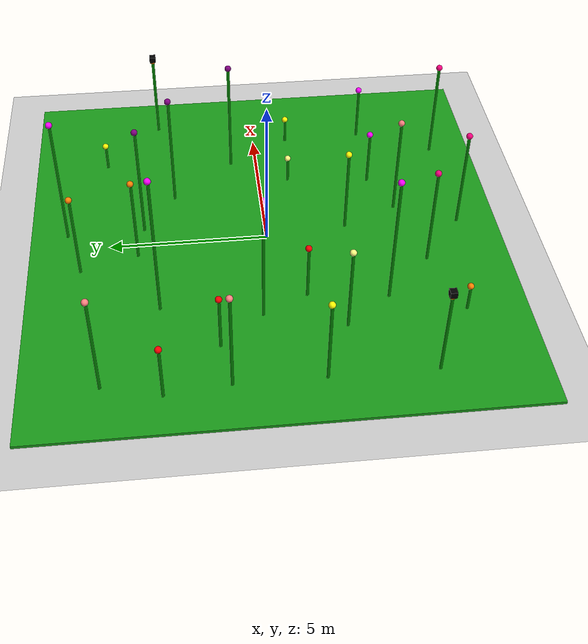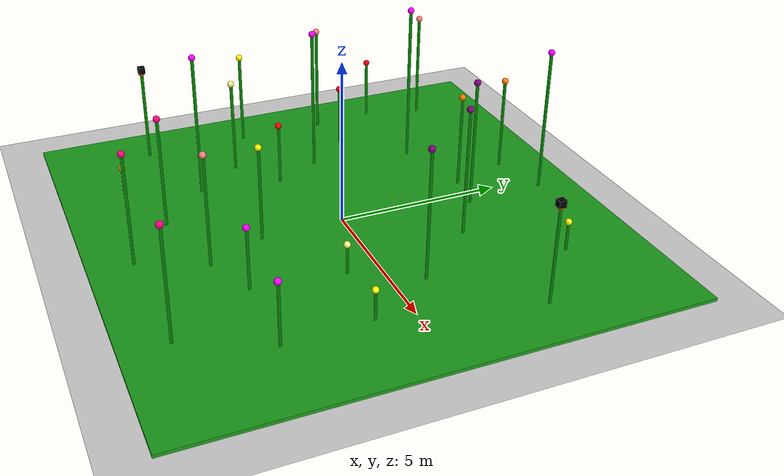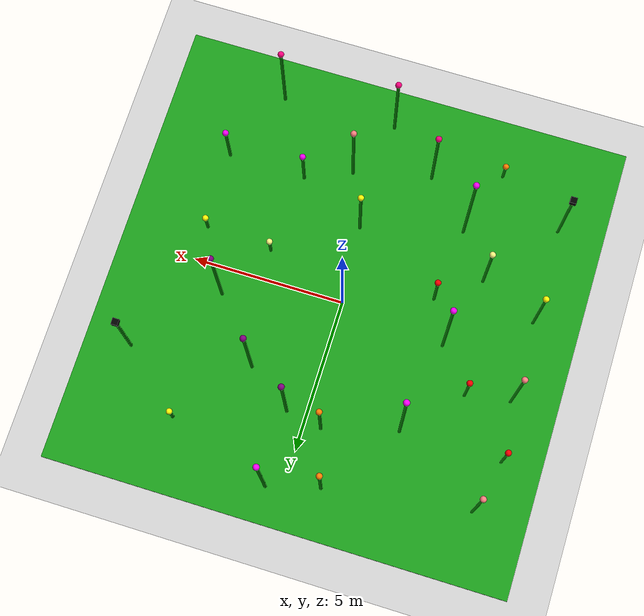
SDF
<?xml version="1.0" ?>
<sdf version="1.6">
  <world name="farm_world">

    <!-- Physics -->
    <physics name="default_physics" type="ode">
      <max_step_size>0.001</max_step_size>
      <real_time_factor>1</real_time_factor>
      <real_time_update_rate>1000</real_time_update_rate>
    </physics>

    <!-- Gravity -->
    <gravity>0 0 -9.8</gravity>

    <!-- Atmosphere -->
    <atmosphere type="adiabatic"/>

    <!-- Scene -->
    <scene>
      <ambient>0.4 0.4 0.4 1</ambient>
      <background>0.7 0.7 0.7 1</background>
      <shadows>true</shadows>
    </scene>

    <!-- Ground Plane -->
    <model name='ground_plane'>
      <static>true</static>
      <link name='link'>
        <collision name='collision'>
          <geometry>
            <plane>
              <normal>0 0 1</normal>
              <size>100 100</size>
            </plane>
          </geometry>
          <surface>
            <friction><ode/></friction>
          </surface>
        </collision>
        <visual name='visual'>
          <geometry>
            <plane>
              <normal>0 0 1</normal>
              <size>100 100</size>
            </plane>
          </geometry>
          <material>
            <ambient>0.8 0.8 0.8 1</ambient>
            <diffuse>0.8 0.8 0.8 1</diffuse>
            <specular>0.8 0.8 0.8 1</specular>
          </material>
        </visual>
      </link>
    </model>

    <!-- Grass Patch -->
    <model name="grass_patch">
      <static>true</static>
      <link name="link">
        <visual name="grass_visual">
          <geometry>
            <box>
              <size>15 15 0.1</size>
            </box>
          </geometry>
          <material>
            <ambient>0.1 0.6 0.1 1</ambient>
            <diffuse>0.1 0.6 0.1 1</diffuse>
          </material>
          <pose>0 0 0.05 0 0 0</pose>
        </visual>
        <collision name="grass_collision">
          <geometry>
            <box>
              <size>15 15 0.1</size>
            </box>
          </geometry>
        </collision>
      </link>
    </model>

    <!-- 30 Random Flowers -->

    <model name="flower1">
      <static>true</static>
      <link name="link">
        <visual name="stem_visual">
          <geometry><cylinder><radius>0.05</radius><length>2.0</length></cylinder></geometry>
          <material><ambient>0 0.5 0 1</ambient><diffuse>0 0.5 0 1</diffuse></material>
          <pose>0 0 1.0 0 0 0</pose>
        </visual>
        <visual name="top_visual">
          <geometry><sphere><radius>0.1</radius></sphere></geometry>
          <material><ambient>1 0 0 1</ambient><diffuse>1 0 0 1</diffuse></material>
          <pose>0 0 2.0 0 0 0</pose>
        </visual>
        <collision name="stem_collision">
          <geometry><cylinder><radius>0.05</radius><length>2.0</length></cylinder></geometry>
          <pose>0 0 1.0 0 0 0</pose>
        </collision>
        <collision name="top_collision">
          <geometry><sphere><radius>0.1</radius></sphere></geometry>
          <pose>0 0 2.0 0 0 0</pose>
        </collision>
      </link>
      <pose>-6.21 3.47 0 0 0 0</pose>
    </model>

    <model name="flower2">
      <static>true</static>
      <link name="link">
        <visual name="stem_visual">
          <geometry><cylinder><radius>0.05</radius><length>1.0</length></cylinder></geometry>
          <material><ambient>0 0.5 0 1</ambient><diffuse>0 0.5 0 1</diffuse></material>
          <pose>0 0 0.5 0 0 0</pose>
        </visual>
        <visual name="top_visual">
          <geometry><sphere><radius>0.1</radius></sphere></geometry>
          <material><ambient>1 1 0 1</ambient><diffuse>1 1 0 1</diffuse></material>
          <pose>0 0 1.0 0 0 0</pose>
        </visual>
        <collision name="stem_collision">
          <geometry><cylinder><radius>0.05</radius><length>1.0</length></cylinder></geometry>
          <pose>0 0 0.5 0 0 0</pose>
        </collision>
        <collision name="top_collision">
          <geometry><sphere><radius>0.1</radius></sphere></geometry>
          <pose>0 0 1.0 0 0 0</pose>
        </collision>
      </link>
      <pose>4.9199999999999999 -1.1299999999999999 0 0 0 0</pose>
    </model>

    <model name="flower3">
      <static>true</static>
      <link name="link">
        <visual name="stem_visual">
          <geometry><cylinder><radius>0.05</radius><length>4.5</length></cylinder></geometry>
          <material><ambient>0 0.5 0 1</ambient><diffuse>0 0.5 0 1</diffuse></material>
          <pose>0 0 2.25 0 0 0</pose>
        </visual>
        <visual name="top_visual">
          <geometry><sphere><radius>0.1</radius></sphere></geometry>
          <material><ambient>1 0 1 1</ambient><diffuse>1 0 1 1</diffuse></material>
          <pose>0 0 4.5 0 0 0</pose>
        </visual>
        <collision name="stem_collision">
          <geometry><cylinder><radius>0.05</radius><length>4.5</length></cylinder></geometry>
          <pose>0 0 2.25 0 0 0</pose>
        </collision>
        <collision name="top_collision">
          <geometry><sphere><radius>0.1</radius></sphere></geometry>
          <pose>0 0 4.5 0 0 0</pose>
        </collision>
      </link>
      <pose>0.55000000000000004 6.3399999999999999 0 0 0 0</pose>
    </model>

    <model name="flower4">
      <static>true</static>
      <link name="link">
        <visual name="stem_visual">
          <geometry><cylinder><radius>0.05</radius><length>1.0</length></cylinder></geometry>
          <material><ambient>0 0.5 0 1</ambient><diffuse>0 0.5 0 1</diffuse></material>
          <pose>0 0 0.5 0 0 0</pose>
        </visual>
        <visual name="top_visual">
          <geometry><sphere><radius>0.1</radius></sphere></geometry>
          <material><ambient>1 0.5 0 1</ambient><diffuse>1 0.5 0 1</diffuse></material>
          <pose>0 0 1.0 0 0 0</pose>
        </visual>
        <collision name="stem_collision">
          <geometry><cylinder><radius>0.05</radius><length>1.0</length></cylinder></geometry>
          <pose>0 0 0.5 0 0 0</pose>
        </collision>
        <collision name="top_collision">
          <geometry><sphere><radius>0.1</radius></sphere></geometry>
          <pose>0 0 1.0 0 0 0</pose>
        </collision>
      </link>
      <pose>-3.78 -5.62 0 0 0 0</pose>
    </model>

    <model name="flower5">
      <static>true</static>
      <link name="link">
        <visual name="stem_visual">
          <geometry><cylinder><radius>0.05</radius><length>4.0</length></cylinder></geometry>
          <material><ambient>0 0.5 0 1</ambient><diffuse>0 0.5 0 1</diffuse></material>
          <pose>0 0 2.0 0 0 0</pose>
        </visual>
        <visual name="top_visual">
          <geometry><sphere><radius>0.1</radius></sphere></geometry>
          <material><ambient>0.5 0 0.5 1</ambient><diffuse>0.5 0 0.5 1</diffuse></material>
          <pose>0 0 4.0 0 0 0</pose>
        </visual>
        <collision name="stem_collision">
          <geometry><cylinder><radius>0.05</radius><length>4.0</length></cylinder></geometry>
          <pose>0 0 2.0 0 0 0</pose>
        </collision>
        <collision name="top_collision">
          <geometry><sphere><radius>0.1</radius></sphere></geometry>
          <pose>0 0 4.0 0 0 0</pose>
        </collision>
      </link>
      <pose>2.11 2.87 0 0 0 0</pose>
    </model>

    <model name="flower6">
      <static>true</static>
      <link name="link">
        <visual name="stem_visual">
          <geometry><cylinder><radius>0.05</radius><length>1.0</length></cylinder></geometry>
          <material><ambient>0 0.5 0 1</ambient><diffuse>0 0.5 0 1</diffuse></material>
          <pose>0 0 0.5 0 0 0</pose>
        </visual>
        <visual name="top_visual">
          <geometry><sphere><radius>0.1</radius></sphere></geometry>
          <material><ambient>1 1 0.5 1</ambient><diffuse>1 1 0.5 1</diffuse></material>
          <pose>0 0 1.0 0 0 0</pose>
        </visual>
        <collision name="stem_collision">
          <geometry><cylinder><radius>0.05</radius><length>1.0</length></cylinder></geometry>
          <pose>0 0 0.5 0 0 0</pose>
        </collision>
        <collision name="top_collision">
          <geometry><sphere><radius>0.1</radius></sphere></geometry>
          <pose>0 0 1.0 0 0 0</pose>
        </collision>
      </link>
      <pose>2.7268669605255127 -0.98000001907348633 0 0 0 0</pose>
    </model>

    <model name="flower7">
      <static>true</static>
      <link name="link">
        <visual name="stem_visual">
          <geometry><cylinder><radius>0.05</radius><length>2.0</length></cylinder></geometry>
          <material><ambient>0 0.5 0 1</ambient><diffuse>0 0.5 0 1</diffuse></material>
          <pose>0 0 1.0 0 0 0</pose>
        </visual>
        <visual name="top_visual">
          <geometry><sphere><radius>0.1</radius></sphere></geometry>
          <material><ambient>1 0 1 1</ambient><diffuse>1 0 1 1</diffuse></material>
          <pose>0 0 2.0 0 0 0</pose>
        </visual>
        <collision name="stem_collision">
          <geometry><cylinder><radius>0.05</radius><length>2.0</length></cylinder></geometry>
          <pose>0 0 1.0 0 0 0</pose>
        </collision>
        <collision name="top_collision">
          <geometry><sphere><radius>0.1</radius></sphere></geometry>
          <pose>0 0 2.0 0 0 0</pose>
        </collision>
      </link>
      <pose>5.0106801986694336 -3.7122397422790527 0 0 0 0</pose>
    </model>

    <model name="flower8">
      <static>true</static>
      <link name="link">
        <visual name="stem_visual">
          <geometry><cylinder><radius>0.05</radius><length>3.5</length></cylinder></geometry>
          <material><ambient>0 0.5 0 1</ambient><diffuse>0 0.5 0 1</diffuse></material>
          <pose>0 0 1.75 0 0 0</pose>
        </visual>
        <visual name="top_visual">
          <geometry><sphere><radius>0.1</radius></sphere></geometry>
          <material><ambient>1 0.5 0.5 1</ambient><diffuse>1 0.5 0.5 1</diffuse></material>
          <pose>0 0 3.5 0 0 0</pose>
        </visual>
        <collision name="stem_collision">
          <geometry><cylinder><radius>0.05</radius><length>3.5</length></cylinder></geometry>
          <pose>0 0 1.75 0 0 0</pose>
        </collision>
        <collision name="top_collision">
          <geometry><sphere><radius>0.1</radius></sphere></geometry>
          <pose>0 0 3.5 0 0 0</pose>
        </collision>
      </link>
      <pose>-5.76 5.21 0 0 0 0</pose>
    </model>

    <model name="flower9">
      <static>true</static>
      <link name="link">
        <visual name="stem_visual">
          <geometry><cylinder><radius>0.05</radius><length>3.5</length></cylinder></geometry>
          <material><ambient>0 0.5 0 1</ambient><diffuse>0 0.5 0 1</diffuse></material>
          <pose>0 0 1.75 0 0 0</pose>
        </visual>
        <visual name="top_visual">
          <geometry><sphere><radius>0.1</radius></sphere></geometry>
          <material><ambient>1 0 0.5 1</ambient><diffuse>1 0 0.5 1</diffuse></material>
          <pose>0 0 3.5 0 0 0</pose>
        </visual>
        <collision name="stem_collision">
          <geometry><cylinder><radius>0.05</radius><length>3.5</length></cylinder></geometry>
          <pose>0 0 1.75 0 0 0</pose>
        </collision>
        <collision name="top_collision">
          <geometry><sphere><radius>0.1</radius></sphere></geometry>
          <pose>0 0 3.5 0 0 0</pose>
        </collision>
      </link>
      <pose>3.88 -6.14 0 0 0 0</pose>
    </model>

    <model name="flower11">
      <static>true</static>
      <link name="link">
        <visual name="stem_visual">
          <geometry><cylinder><radius>0.05</radius><length>2.0</length></cylinder></geometry>
          <material><ambient>0 0.5 0 1</ambient><diffuse>0 0.5 0 1</diffuse></material>
          <pose>0 0 1.0 0 0 0</pose>
        </visual>
        <visual name="top_visual">
          <geometry><sphere><radius>0.1</radius></sphere></geometry>
          <material><ambient>1 0 0 1</ambient><diffuse>1 0 0 1</diffuse></material>
          <pose>0 0 2.0 0 0 0</pose>
        </visual>
        <collision name="stem_collision">
          <geometry><cylinder><radius>0.05</radius><length>2.0</length></cylinder></geometry>
          <pose>0 0 1.0 0 0 0</pose>
        </collision>
        <collision name="top_collision">
          <geometry><sphere><radius>0.1</radius></sphere></geometry>
          <pose>0 0 2.0 0 0 0</pose>
        </collision>
      </link>
      <pose>-2.7699999809265137 -0.95477199554443359 0 0 0 0</pose>
    </model>

    <model name="flower12">
      <static>true</static>
      <link name="link">
        <visual name="stem_visual">
          <geometry><cylinder><radius>0.05</radius><length>3.0</length></cylinder></geometry>
          <material><ambient>0 0.5 0 1</ambient><diffuse>0 0.5 0 1</diffuse></material>
          <pose>0 0 1.5 0 0 0</pose>
        </visual>
        <visual name="top_visual">
          <geometry><sphere><radius>0.1</radius></sphere></geometry>
          <material><ambient>1 1 0 1</ambient><diffuse>1 1 0 1</diffuse></material>
          <pose>0 0 3.0 0 0 0</pose>
        </visual>
        <collision name="stem_collision">
          <geometry><cylinder><radius>0.05</radius><length>3.0</length></cylinder></geometry>
          <pose>0 0 1.5 0 0 0</pose>
        </collision>
        <collision name="top_collision">
          <geometry><sphere><radius>0.1</radius></sphere></geometry>
          <pose>0 0 3.0 0 0 0</pose>
        </collision>
      </link>
      <pose>0.19871200621128082 -2.5511820316314697 0 0 0 0</pose>
    </model>

    <model name="flower13">
      <static>true</static>
      <link name="link">
        <visual name="stem_visual">
          <geometry><cylinder><radius>0.05</radius><length>4.5</length></cylinder></geometry>
          <material><ambient>0 0.5 0 1</ambient><diffuse>0 0.5 0 1</diffuse></material>
          <pose>0 0 2.25 0 0 0</pose>
        </visual>
        <visual name="top_visual">
          <geometry><sphere><radius>0.1</radius></sphere></geometry>
          <material><ambient>1 0 1 1</ambient><diffuse>1 0 1 1</diffuse></material>
          <pose>0 0 4.5 0 0 0</pose>
        </visual>
        <collision name="stem_collision">
          <geometry><cylinder><radius>0.05</radius><length>4.5</length></cylinder></geometry>
          <pose>0 0 2.25 0 0 0</pose>
        </collision>
        <collision name="top_collision">
          <geometry><sphere><radius>0.1</radius></sphere></geometry>
          <pose>0 0 4.5 0 0 0</pose>
        </collision>
      </link>
      <pose>-3.0538747310638428 -3.3986799716949463 0 0 0 0</pose>
    </model>

    <model name="flower14">
      <static>true</static>
      <link name="link">
        <!-- Stem -->
        <visual name="stem_visual">
          <geometry><cylinder><radius>0.05</radius><length>3.0</length></cylinder></geometry>
          <material><ambient>0 0.5 0 1</ambient><diffuse>0 0.5 0 1</diffuse></material>
          <pose>0 0 1.5 0 0 0</pose>
        </visual>
        <!-- Top -->
        <visual name="top_visual">
          <geometry><sphere><radius>0.1</radius></sphere></geometry>
          <material><ambient>1 0.5 0 1</ambient><diffuse>1 0.5 0 1</diffuse></material>
          <pose>0 0 3.0 0 0 0</pose>
        </visual>
        <!-- Collisions -->
        <collision name="stem_collision">
          <geometry><cylinder><radius>0.05</radius><length>3.0</length></cylinder></geometry>
          <pose>0 0 1.5 0 0 0</pose>
        </collision>
        <collision name="top_collision">
          <geometry><sphere><radius>0.1</radius></sphere></geometry>
          <pose>0 0 3.0 0 0 0</pose>
        </collision>

        <!-- Bee visual attached to the flower -->
        <visual name="bee_visual">
        <geometry>
            <box><size>0.2 0.2 0.2</size></box>
        </geometry>
        <material>
            <ambient>0 0 0 1</ambient>
            <diffuse>0 0 0 1</diffuse>
        </material>
        <!-- position relative to flower link -->
        <pose>0 0 3.1 0 0 0</pose>
        </visual>
        <collision name="bee_collision">
        <geometry>
            <box><size>0.2 0.2 0.2</size></box>
        </geometry>
        <pose>0 0 3.1 0 0 0</pose>
        </collision>

      </link>
      <!-- World pose -->
      <pose>-5.98816 -4.31248 0 0 0 0</pose>
    </model>

    <!-- Flower 15 -->
    <model name="flower15">
      <static>true</static>
      <link name="link">
        <!-- Stem -->
        <visual name="stem_visual">
          <geometry><cylinder><radius>0.05</radius><length>4.0</length></cylinder></geometry>
          <material><ambient>0 0.5 0 1</ambient><diffuse>0 0.5 0 1</diffuse></material>
          <pose>0 0 2.0 0 0 0</pose>
        </visual>
        <collision name="stem_collision">
          <geometry><cylinder><radius>0.05</radius><length>4.0</length></cylinder></geometry>
          <pose>0 0 2.0 0 0 0</pose>
        </collision>

        <!-- Top -->
        <visual name="top_visual">
          <geometry><sphere><radius>0.1</radius></sphere></geometry>
          <material><ambient>0.5 0 0.5 1</ambient><diffuse>0.5 0 0.5 1</diffuse></material>
          <pose>0 0 4.0 0 0 0</pose>
        </visual>
        <collision name="top_collision">
          <geometry><sphere><radius>0.1</radius></sphere></geometry>
          <pose>0 0 4.0 0 0 0</pose>
        </collision>
      </link>
      <pose>3.77 0.88 0 0 0 0</pose>
    </model>

    <!-- Flower 16 -->
    <model name="flower16">
      <static>true</static>
      <link name="link">
        <!-- Stem -->
        <visual name="stem_visual">
          <geometry><cylinder><radius>0.05</radius><length>3.0</length></cylinder></geometry>
          <material><ambient>0 0.5 0 1</ambient><diffuse>0 0.5 0 1</diffuse></material>
          <pose>0 0 1.5 0 0 0</pose>
        </visual>
        <!-- Top -->
        <visual name="top_visual">
          <geometry><sphere><radius>0.1</radius></sphere></geometry>
          <material><ambient>1 0.5 0 1</ambient><diffuse>1 0.5 0 1</diffuse></material>
          <pose>0 0 3.0 0 0 0</pose>
        </visual>
        <!-- Collisions -->
        <collision name="stem_collision">
          <geometry><cylinder><radius>0.05</radius><length>3.0</length></cylinder></geometry>
          <pose>0 0 1.5 0 0 0</pose>
        </collision>
        <collision name="top_collision">
          <geometry><sphere><radius>0.1</radius></sphere></geometry>
          <pose>0 0 3.0 0 0 0</pose>
        </collision>
      </link>
      <!-- World pose -->
      <pose>-0.55 4.11 0 0 0 0</pose>
    </model>

    <!-- Flower 17 -->
    <model name="flower17">
      <static>true</static>
      <link name="link">
        <visual name="stem_visual">
          <geometry><cylinder><radius>0.05</radius><length>2.0</length></cylinder></geometry>
          <material><ambient>0 0.5 0 1</ambient><diffuse>0 0.5 0 1</diffuse></material>
          <pose>0 0 1.0 0 0 0</pose>
        </visual>
        <collision name="stem_collision">
          <geometry><cylinder><radius>0.05</radius><length>2.0</length></cylinder></geometry>
          <pose>0 0 1.0 0 0 0</pose>
        </collision>

        <visual name="top_visual">
          <geometry><sphere><radius>0.1</radius></sphere></geometry>
          <material><ambient>1 0 1 1</ambient><diffuse>1 0 1 1</diffuse></material>
          <pose>0 0 2.0 0 0 0</pose>
        </visual>
        <collision name="top_collision">
          <geometry><sphere><radius>0.1</radius></sphere></geometry>
          <pose>0 0 2.0 0 0 0</pose>
        </collision>
      </link>
      <pose>2.44 -3.66 0 0 0 0</pose>
    </model>

    <!-- Flower 18 -->
    <model name="flower18">
      <static>true</static>
      <link name="link">
        <visual name="stem_visual">
          <geometry><cylinder><radius>0.05</radius><length>3.5</length></cylinder></geometry>
          <material><ambient>0 0.5 0 1</ambient><diffuse>0 0.5 0 1</diffuse></material>
          <pose>0 0 1.75 0 0 0</pose>
        </visual>
        <collision name="stem_collision">
          <geometry><cylinder><radius>0.05</radius><length>3.5</length></cylinder></geometry>
          <pose>0 0 1.75 0 0 0</pose>
        </collision>

        <visual name="top_visual">
          <geometry><sphere><radius>0.1</radius></sphere></geometry>
          <material><ambient>1 0.5 0.5 1</ambient><diffuse>1 0.5 0.5 1</diffuse></material>
          <pose>0 0 3.5 0 0 0</pose>
        </visual>
        <collision name="top_collision">
          <geometry><sphere><radius>0.1</radius></sphere></geometry>
          <pose>0 0 3.5 0 0 0</pose>
        </collision>
      </link>
      <pose>-5.99 1.55 0 0 0 0</pose>
    </model>

    <!-- Flower 19 -->
    <model name="flower19">
      <static>true</static>
      <link name="link">
        <visual name="stem_visual">
          <geometry><cylinder><radius>0.05</radius><length>3.5</length></cylinder></geometry>
          <material><ambient>0 0.5 0 1</ambient><diffuse>0 0.5 0 1</diffuse></material>
          <pose>0 0 1.75 0 0 0</pose>
        </visual>
        <collision name="stem_collision">
          <geometry><cylinder><radius>0.05</radius><length>3.5</length></cylinder></geometry>
          <pose>0 0 1.75 0 0 0</pose>
        </collision>

        <visual name="top_visual">
          <geometry><sphere><radius>0.1</radius></sphere></geometry>
          <material><ambient>1 0 0.5 1</ambient><diffuse>1 0 0.5 1</diffuse></material>
          <pose>0 0 3.5 0 0 0</pose>
        </visual>
        <collision name="top_collision">
          <geometry><sphere><radius>0.1</radius></sphere></geometry>
          <pose>0 0 3.5 0 0 0</pose>
        </collision>
      </link>
      <pose>0.11 -6.22 0 0 0 0</pose>
    </model>

    <!-- Flower 20 -->
    <model name="flower20">
      <static>true</static>
      <link name="link">
        <!-- Stem -->
        <visual name="stem_visual">
          <geometry><cylinder><radius>0.05</radius><length>3.0</length></cylinder></geometry>
          <material><ambient>0 0.5 0 1</ambient><diffuse>0 0.5 0 1</diffuse></material>
          <pose>0 0 1.5 0 0 0</pose>
        </visual>
        <!-- Top -->
        <visual name="top_visual">
          <geometry><sphere><radius>0.1</radius></sphere></geometry>
          <material><ambient>1 0.5 0 1</ambient><diffuse>1 0.5 0 1</diffuse></material>
          <pose>0 0 3.0 0 0 0</pose>
        </visual>
        <!-- Collisions -->
        <collision name="stem_collision">
          <geometry><cylinder><radius>0.05</radius><length>3.0</length></cylinder></geometry>
          <pose>0 0 1.5 0 0 0</pose>
        </collision>
        <collision name="top_collision">
          <geometry><sphere><radius>0.1</radius></sphere></geometry>
          <pose>0 0 3.0 0 0 0</pose>
        </collision>

        <!-- Bee visual attached to the flower -->
        <visual name="bee_visual">
        <geometry>
            <box><size>0.2 0.2 0.2</size></box>
        </geometry>
        <material>
            <ambient>0 0 0 1</ambient>
            <diffuse>0 0 0 1</diffuse>
        </material>
        <!-- position relative to flower link -->
        <pose>0 0 3.1 0 0 0</pose>
        </visual>
        <collision name="bee_collision">
        <geometry>
            <box><size>0.2 0.2 0.2</size></box>
        </geometry>
        <pose>0 0 3.1 0 0 0</pose>
        </collision>

      </link>
      <!-- World pose -->
      <pose>6 3.33 0 0 0 0</pose>
    </model>

    <model name="flower21">
      <static>true</static>
      <link name="link">
        <visual name="stem_visual">
          <geometry><cylinder><radius>0.05</radius><length>2.0</length></cylinder></geometry>
          <material><ambient>0 0.5 0 1</ambient><diffuse>0 0.5 0 1</diffuse></material>
          <pose>0 0 1.0 0 0 0</pose>
        </visual>
        <visual name="top_visual">
          <geometry><sphere><radius>0.1</radius></sphere></geometry>
          <material><ambient>1 0 0 1</ambient><diffuse>1 0 0 1</diffuse></material>
          <pose>0 0 2.0 0 0 0</pose>
        </visual>
        <collision name="stem_collision">
          <geometry><cylinder><radius>0.05</radius><length>2.0</length></cylinder></geometry>
          <pose>0 0 1.0 0 0 0</pose>
        </collision>
        <collision name="top_collision">
          <geometry><sphere><radius>0.1</radius></sphere></geometry>
          <pose>0 0 2.0 0 0 0</pose>
        </collision>
      </link>
      <pose>-4.5499999999999998 1.78 0 0 0 0</pose>
    </model>

    <model name="flower22">
      <static>true</static>
      <link name="link">
        <visual name="stem_visual">
          <geometry><cylinder><radius>0.05</radius><length>3.0</length></cylinder></geometry>
          <material><ambient>0 0.5 0 1</ambient><diffuse>0 0.5 0 1</diffuse></material>
          <pose>0 0 1.5 0 0 0</pose>
        </visual>
        <visual name="top_visual">
          <geometry><sphere><radius>0.1</radius></sphere></geometry>
          <material><ambient>1 1 0 1</ambient><diffuse>1 1 0 1</diffuse></material>
          <pose>0 0 3.0 0 0 0</pose>
        </visual>
        <collision name="stem_collision">
          <geometry><cylinder><radius>0.05</radius><length>3.0</length></cylinder></geometry>
          <pose>0 0 1.5 0 0 0</pose>
        </collision>
        <collision name="top_collision">
          <geometry><sphere><radius>0.1</radius></sphere></geometry>
          <pose>0 0 3.0 0 0 0</pose>
        </collision>
      </link>
      <pose>-6 -1.12 0 0 0 0</pose>
    </model>

    <model name="flower23">
      <static>true</static>
      <link name="link">
        <visual name="stem_visual">
          <geometry><cylinder><radius>0.05</radius><length>4.5</length></cylinder></geometry>
          <material><ambient>0 0.5 0 1</ambient><diffuse>0 0.5 0 1</diffuse></material>
          <pose>0 0 2.25 0 0 0</pose>
        </visual>
        <visual name="top_visual">
          <geometry><sphere><radius>0.1</radius></sphere></geometry>
          <material><ambient>1 0 1 1</ambient><diffuse>1 0 1 1</diffuse></material>
          <pose>0 0 4.5 0 0 0</pose>
        </visual>
        <collision name="stem_collision">
          <geometry><cylinder><radius>0.05</radius><length>4.5</length></cylinder></geometry>
          <pose>0 0 2.25 0 0 0</pose>
        </collision>
        <collision name="top_collision">
          <geometry><sphere><radius>0.1</radius></sphere></geometry>
          <pose>0 0 4.5 0 0 0</pose>
        </collision>
      </link>
      <pose>-3.4500000000000002 0.44 0 0 0 0</pose>
    </model>

    <model name="flower24">
      <static>true</static>
      <link name="link">
        <visual name="stem_visual">
          <geometry><cylinder><radius>0.05</radius><length>3.0</length></cylinder></geometry>
          <material><ambient>0 0.5 0 1</ambient><diffuse>0 0.5 0 1</diffuse></material>
          <pose>0 0 1.5 0 0 0</pose>
        </visual>
        <visual name="top_visual">
          <geometry><sphere><radius>0.1</radius></sphere></geometry>
          <material><ambient>1 0.5 0 1</ambient><diffuse>1 0.5 0 1</diffuse></material>
          <pose>0 0 3.0 0 0 0</pose>
        </visual>
        <collision name="stem_collision">
          <geometry><cylinder><radius>0.05</radius><length>3.0</length></cylinder></geometry>
          <pose>0 0 1.5 0 0 0</pose>
        </collision>
        <collision name="top_collision">
          <geometry><sphere><radius>0.1</radius></sphere></geometry>
          <pose>0 0 3.0 0 0 0</pose>
        </collision>
      </link>
      <pose>-1.1100000000000001 5.8899999999999997 0 0 0 0</pose>
    </model>

    <model name="flower25">
      <static>true</static>
      <link name="link">
        <visual name="stem_visual">
          <geometry><cylinder><radius>0.05</radius><length>4.0</length></cylinder></geometry>
          <material><ambient>0 0.5 0 1</ambient><diffuse>0 0.5 0 1</diffuse></material>
          <pose>0 0 2.0 0 0 0</pose>
        </visual>
        <visual name="top_visual">
          <geometry><sphere><radius>0.1</radius></sphere></geometry>
          <material><ambient>0.5 0 0.5 1</ambient><diffuse>0.5 0 0.5 1</diffuse></material>
          <pose>0 0 4.0 0 0 0</pose>
        </visual>
        <collision name="stem_collision">
          <geometry><cylinder><radius>0.05</radius><length>4.0</length></cylinder></geometry>
          <pose>0 0 2.0 0 0 0</pose>
        </collision>
        <collision name="top_collision">
          <geometry><sphere><radius>0.1</radius></sphere></geometry>
          <pose>0 0 4.0 0 0 0</pose>
        </collision>
      </link>
      <pose>0.62909823656082153 3.9000000953674316 0 0 0 0</pose>
    </model>

    <model name="flower26">
      <static>true</static>
      <link name="link">
        <visual name="stem_visual">
          <geometry><cylinder><radius>0.05</radius><length>3.0</length></cylinder></geometry>
          <material><ambient>0 0.5 0 1</ambient><diffuse>0 0.5 0 1</diffuse></material>
          <pose>0 0 1.5 0 0 0</pose>
        </visual>
        <visual name="top_visual">
          <geometry><sphere><radius>0.1</radius></sphere></geometry>
          <material><ambient>1 1 0.5 1</ambient><diffuse>1 1 0.5 1</diffuse></material>
          <pose>0 0 3.0 0 0 0</pose>
        </visual>
        <collision name="stem_collision">
          <geometry><cylinder><radius>0.05</radius><length>3.0</length></cylinder></geometry>
          <pose>0 0 1.5 0 0 0</pose>
        </collision>
        <collision name="top_collision">
          <geometry><sphere><radius>0.1</radius></sphere></geometry>
          <pose>0 0 3.0 0 0 0</pose>
        </collision>
      </link>
      <pose>-4.11 -1.98412 0 0 0 0</pose>
    </model>

    <model name="flower27">
      <static>true</static>
      <link name="link">
        <visual name="stem_visual">
          <geometry><cylinder><radius>0.05</radius><length>5.0</length></cylinder></geometry>
          <material><ambient>0 0.5 0 1</ambient><diffuse>0 0.5 0 1</diffuse></material>
          <pose>0 0 2.5 0 0 0</pose>
        </visual>
        <visual name="top_visual">
          <geometry><sphere><radius>0.1</radius></sphere></geometry>
          <material><ambient>1 0 1 1</ambient><diffuse>1 0 1 1</diffuse></material>
          <pose>0 0 5.0 0 0 0</pose>
        </visual>
        <collision name="stem_collision">
          <geometry><cylinder><radius>0.05</radius><length>5.0</length></cylinder></geometry>
          <pose>0 0 2.5 0 0 0</pose>
        </collision>
        <collision name="top_collision">
          <geometry><sphere><radius>0.1</radius></sphere></geometry>
          <pose>0 0 5.0 0 0 0</pose>
        </collision>
      </link>
      <pose>-2.92136 3.47924 0 0 0 0</pose>
    </model>

    <model name="flower28">
      <static>true</static>
      <link name="link">
        <visual name="stem_visual">
          <geometry><cylinder><radius>0.05</radius><length>3.5</length></cylinder></geometry>
          <material><ambient>0 0.5 0 1</ambient><diffuse>0 0.5 0 1</diffuse></material>
          <pose>0 0 1.75 0 0 0</pose>
        </visual>
        <visual name="top_visual">
          <geometry><sphere><radius>0.1</radius></sphere></geometry>
          <material><ambient>1 0.5 0.5 1</ambient><diffuse>1 0.5 0.5 1</diffuse></material>
          <pose>0 0 3.5 0 0 0</pose>
        </visual>
        <collision name="stem_collision">
          <geometry><cylinder><radius>0.05</radius><length>3.5</length></cylinder></geometry>
          <pose>0 0 1.75 0 0 0</pose>
        </collision>
        <collision name="top_collision">
          <geometry><sphere><radius>0.1</radius></sphere></geometry>
          <pose>0 0 3.5 0 0 0</pose>
        </collision>
      </link>
      <pose>0.96102756261825562 -4.2900199890136719 0 0 0 0</pose>
    </model>

    <model name="flower29">
      <static>true</static>
      <link name="link">
        <visual name="stem_visual">
          <geometry><cylinder><radius>0.05</radius><length>3.5</length></cylinder></geometry>
          <material><ambient>0 0.5 0 1</ambient><diffuse>0 0.5 0 1</diffuse></material>
          <pose>0 0 1.75 0 0 0</pose>
        </visual>
        <visual name="top_visual">
          <geometry><sphere><radius>0.1</radius></sphere></geometry>
          <material><ambient>1 0 0.5 1</ambient><diffuse>1 0 0.5 1</diffuse></material>
          <pose>0 0 3.5 0 0 0</pose>
        </visual>
        <collision name="stem_collision">
          <geometry><cylinder><radius>0.05</radius><length>3.5</length></cylinder></geometry>
          <pose>0 0 1.75 0 0 0</pose>
        </collision>
        <collision name="top_collision">
          <geometry><sphere><radius>0.1</radius></sphere></geometry>
          <pose>0 0 3.5 0 0 0</pose>
        </collision>
      </link>
      <pose>-1.5600000000000001 -4.8799999999999999 0 0 0 0</pose>
    </model>

    <model name="flower30">
      <static>true</static>
      <link name="link">
        <visual name="stem_visual">
          <geometry><cylinder><radius>0.05</radius><length>1.0</length></cylinder></geometry>
          <material><ambient>0 0.5 0 1</ambient><diffuse>0 0.5 0 1</diffuse></material>
          <pose>0 0 0.5 0 0 0</pose>
        </visual>
        <visual name="top_visual">
          <geometry><sphere><radius>0.1</radius></sphere></geometry>
          <material><ambient>1 1 0 1</ambient><diffuse>1 1 0 1</diffuse></material>
          <pose>0 0 1.0 0 0 0</pose>
        </visual>
        <collision name="stem_collision">
          <geometry><cylinder><radius>0.05</radius><length>1.0</length></cylinder></geometry>
          <pose>0 0 0.5 0 0 0</pose>
        </collision>
        <collision name="top_collision">
          <geometry><sphere><radius>0.1</radius></sphere></geometry>
          <pose>0 0 1.0 0 0 0</pose>
        </collision>
      </link>
      <pose>3.9900000000000002 5.1100000000000003 0 0 0 0</pose>
    </model>

    <!-- Directional Light -->
    <light name='sun' type='directional'>
      <pose>0 0 10 0 0 0</pose>
      <cast_shadows>true</cast_shadows>
      <intensity>1</intensity>
      <direction>-0.5 0.1 -0.9</direction>
      <diffuse>0.8 0.8 0.8 1</diffuse>
      <specular>0.2 0.2 0.2 1</specular>
      <attenuation>
        <range>1000</range>
        <linear>0.01</linear>
        <constant>0.9</constant>
        <quadratic>0.001</quadratic>
      </attenuation>
    </light>

  </world>
</sdf>
